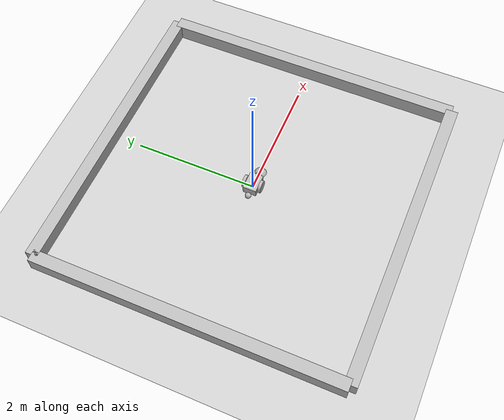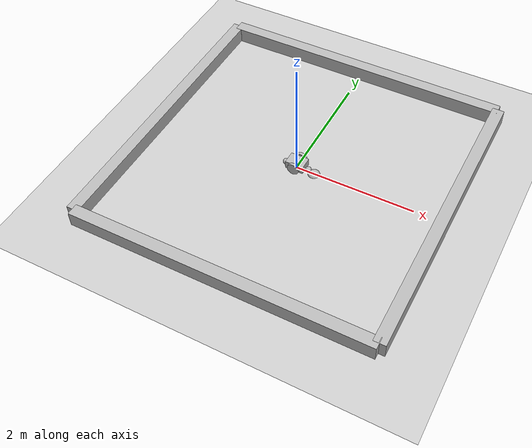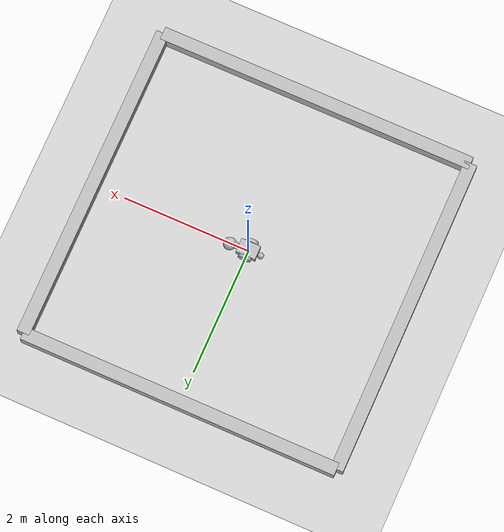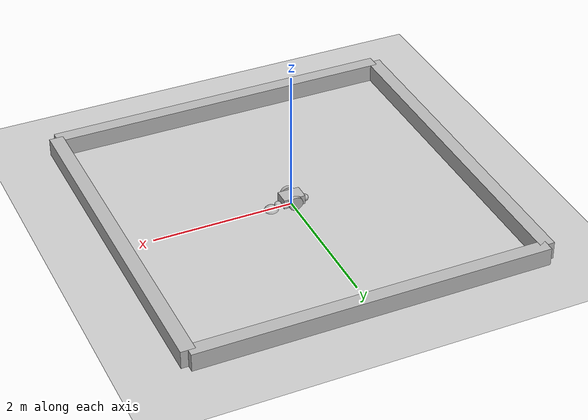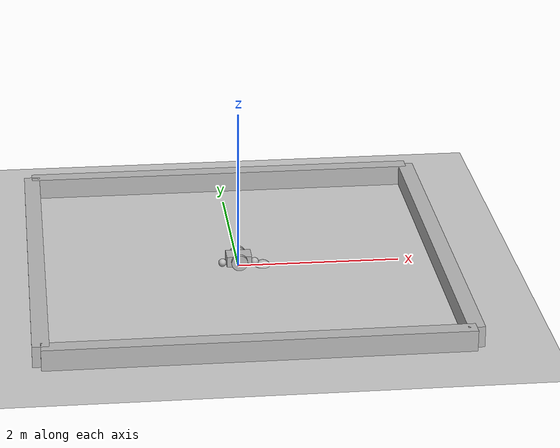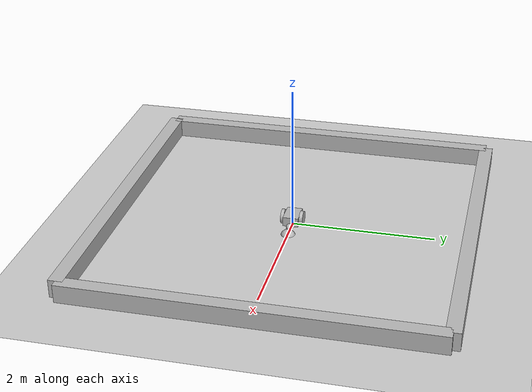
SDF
<?xml version="1.0" ?>
<sdf version="1.5">
  <world name="default">
    <!-- A global light source -->
    <include>
      <uri>model://sun</uri>
    </include>
    <!-- A ground plane -->
    <include>
      <uri>model://ground_plane</uri>
    </include>

    <!-- A testing model that includes the Velodyne sensor model -->
    <model name="main_robonaldo">
      <include>
        <uri>model://robonaldo</uri>
      </include>

      <!-- Attach the plugin to this model -->
      <plugin name="robonaldo_control" filename="librobonaldo_plugin.so"/>

    </model>

    <!-- A soccer ball -->
    <model name="ball">
      <include>
        <uri>model://ball</uri>
      </include>
      <pose>0.2 0 -0.05 0 0 0</pose>
    </model>

    <!-- Fence area -->
    <model name="fence">
      <include>
        <uri>model://fence</uri>
      </include>
    </model>

    <plugin name="robonaldo_world" filename="librobonaldo_world_plugin.so"/>
  </world>
</sdf>

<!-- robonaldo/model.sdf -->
<sdf version='1.5'>
  <model name="robonaldo">
    <static>false</static>
    <link name="chassis">

      <pose>0 0 .09886 0 0 0</pose>
      <collision name="collision">
        <geometry>
          <box>
            <size>.308864 .217932 .13335</size>
          </box>
        </geometry>
      </collision>

      <visual name="visual">
        <geometry>
          <box>
            <size>.308864 .217932 .13335</size>
          </box>
        </geometry>
      </visual>
      <collision name="front_caster_collision">
        <pose>-0.2 0 -0.05 0 0 0</pose>

        <geometry>
          <sphere>
            <radius>.05</radius>
          </sphere>
        </geometry>
        <surface>
          <friction>
            <ode>
              <mu>0</mu>
              <mu2>0</mu2>
              <slip1>1.0</slip1>
              <slip2>1.0</slip2>
            </ode>
          </friction>
        </surface>
      </collision>

      <visual name="front_caster_visual">
        <pose>-0.2 0 -0.05 0 0 0</pose>

        <geometry>
          <sphere>
            <radius>.05</radius>
          </sphere>
        </geometry>
        <!--To make caster wheel heavier, use flesh_mass_fraction-->
      </visual>
      <collision name="back_caster_collision">
        <pose>0.2 0 -0.05 0 0 0</pose>

        <geometry>
          <sphere>
            <radius>.05</radius>
          </sphere>
        </geometry>
        <surface>
          <friction>
            <ode>
              <mu>0</mu>
              <mu2>0</mu2>
              <slip1>1.0</slip1>
              <slip2>1.0</slip2>
            </ode>
          </friction>
        </surface>
      </collision>

      <visual name="back_caster_visual">
        <pose>0.2 0 -0.05 0 0 0</pose>

        <geometry>
          <sphere>
            <radius>.05</radius>
          </sphere>
        </geometry>
        <!--To make caster wheel heavier, use flesh_mass_fraction-->
      </visual>
      <!--Add imu and magnetometer code here-->
      <sensor type="imu" name="imu">
        <imu>
          <linear_acceleration>
            <x></x>
            <y></y>
            <z></z>
          </linear_acceleration>
          <angular_velocity>
            <x></x>
            <y></y>
            <z></z>
          </angular_velocity>
        </imu>
      </sensor>
      <sensor type="magnetometer" name="magnetometer">
        <magnetometer>
          <x></x>
          <y></y>
          <z></z>
        </magnetometer>
      </sensor>
    </link>

    <link name="left_wheel">
      <pose>0 0.1332738 0.1 0 1.5707 1.5707</pose>
      <collision name="collision">
        <geometry>
          <cylinder>
            <radius>.1008888</radius>
            <length>.0486156</length>
          </cylinder>
        </geometry>
      </collision>
      <visual name="visual">
        <geometry>
          <cylinder>
            <radius>.1008888</radius>
            <length>.0486156</length>
          </cylinder>
        </geometry>
      </visual>
    </link>

    <link name="right_wheel">
      <pose>0 -0.1332738 0.1 0 1.5707 1.5707</pose>
      <collision name="collision">
        <geometry>
          <cylinder>
            <radius>.1008888</radius>
            <length>.0486156</length>
          </cylinder>
        </geometry>
      </collision>
      <visual name="visual">
        <geometry>
          <cylinder>
            <radius>.1008888</radius>
            <length>.0486156</length>
          </cylinder>
        </geometry>
      </visual>
    </link>

    <joint type="revolute" name="left_wheel_hinge">
      <pose>0 0 -0.03 0 0 0</pose>
      <child>left_wheel</child>
      <parent>chassis</parent>
      <axis>
        <xyz>0 0 1</xyz>
      </axis>
    </joint>
    <joint type="revolute" name="right_wheel_hinge">
      <pose>0 0 0.03 0 0 0</pose>
      <child>right_wheel</child>
      <parent>chassis</parent>
      <axis>
        <xyz>0 0 1</xyz>
      </axis>
    </joint>

  </model>
</sdf>

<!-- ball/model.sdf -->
<sdf version='1.4'>
  <model name="ball">
    <static>false</static>
    <link name='link'>
      <pose>.1 0 0 0 0 0</pose>

      <collision name='collision'>
        <geometry>
          <sphere>
               <radius>.11</radius>
          </sphere>
        </geometry>
      </collision>

      <visual name='visual'>
        <geometry>
          <sphere>
               <radius>.11</radius>
          </sphere>
        </geometry>
      </visual>

	</link>
  </model>
</sdf>

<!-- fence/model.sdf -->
<sdf version='1.4'>
  <model name="fence">
    <static>true</static>
    <link name='fence1'>
      <pose>-2.5 0 0 0 0 0</pose>
      <collision name='collision'>
        <geometry>
          <box>
               <size>.2 5 .5</size>
          </box>
        </geometry>
      </collision>

      <visual name='visual'>
        <geometry>
          <box>
               <size>.2 5 .5</size>
          </box>
        </geometry>
      </visual>
	</link>

    <link name='fence2'>
      <pose>0 2.5 0 0 0 0</pose>
      <collision name='collision'>
        <geometry>
          <box>
               <size>5 .2 .5</size>
          </box>
        </geometry>
      </collision>

      <visual name='visual'>
        <geometry>
          <box>
               <size>5 .2 .5</size>
          </box>
        </geometry>
      </visual>
  </link>

  <link name='fence3'>
    <pose>0 -2.5 0 0 0 0</pose>
    <collision name='collision'>
      <geometry>
        <box>
             <size>5 .2 .5</size>
        </box>
      </geometry>
    </collision>

    <visual name='visual'>
      <geometry>
        <box>
             <size>5 .2 .5</size>
        </box>
      </geometry>
    </visual>
  </link>

    <link name='fence4'>
      <pose>2.5 0 0 0 0 0</pose>
      <collision name='collision'>
        <geometry>
          <box>
               <size>.2 5 .5</size>
          </box>
        </geometry>
      </collision>

      <visual name='visual'>
        <geometry>
          <box>
               <size>.2 5 .5</size>
          </box>
        </geometry>
      </visual>
  </link>
  </model>
</sdf>
